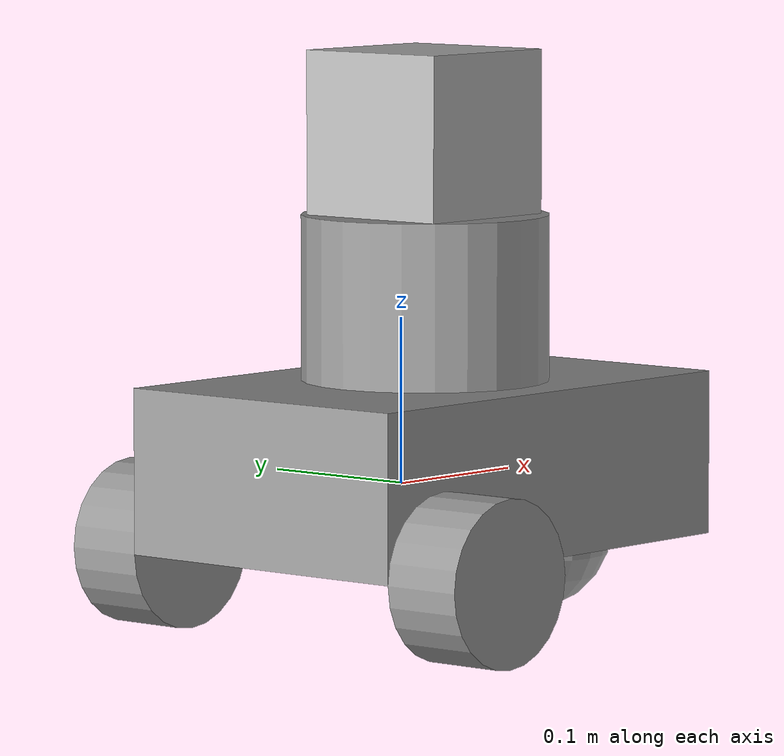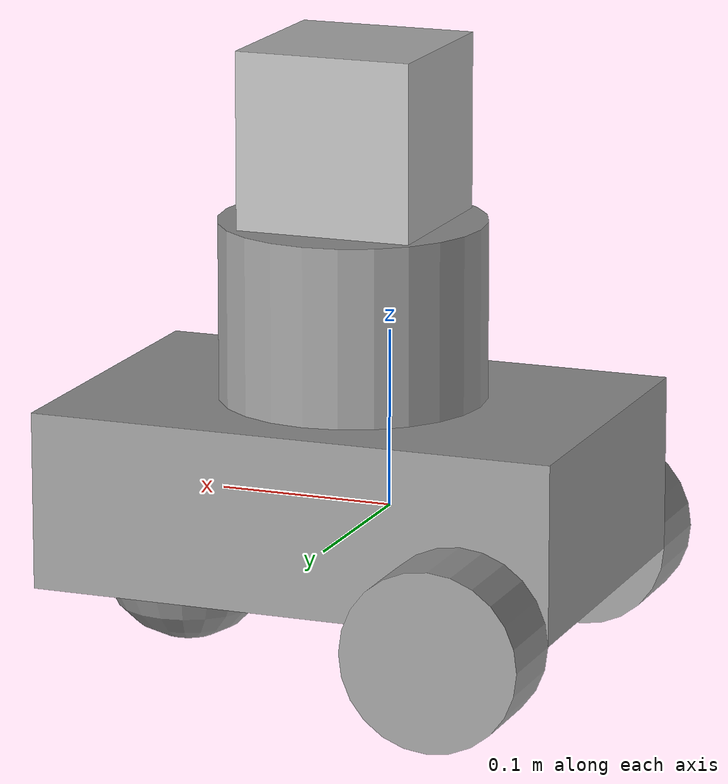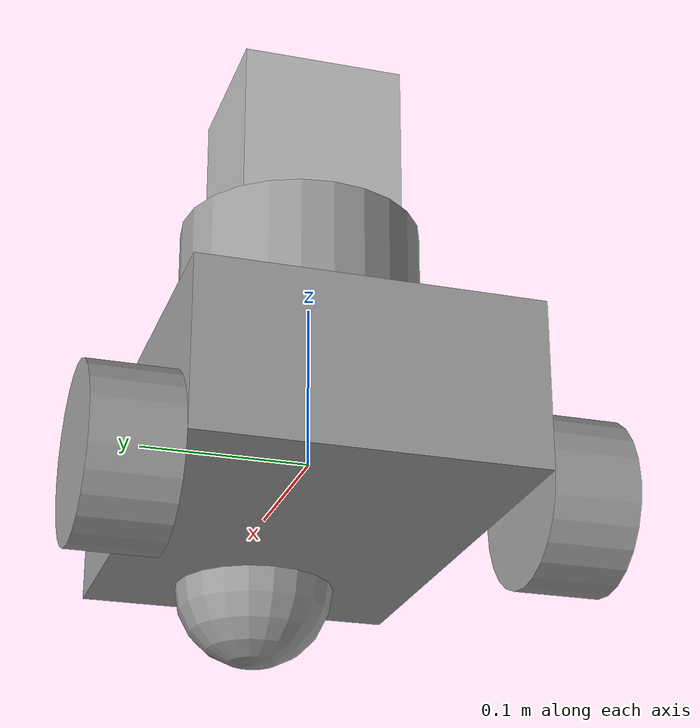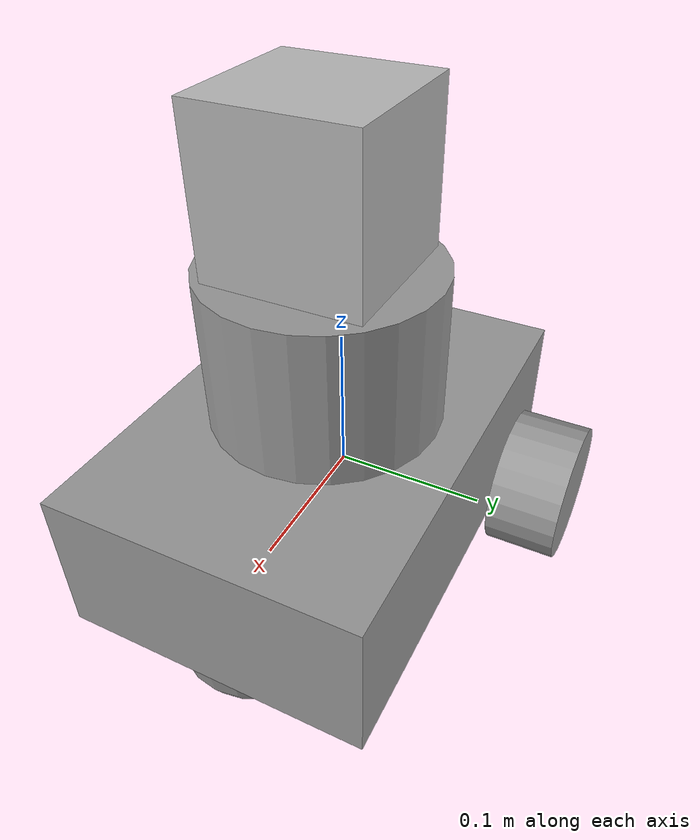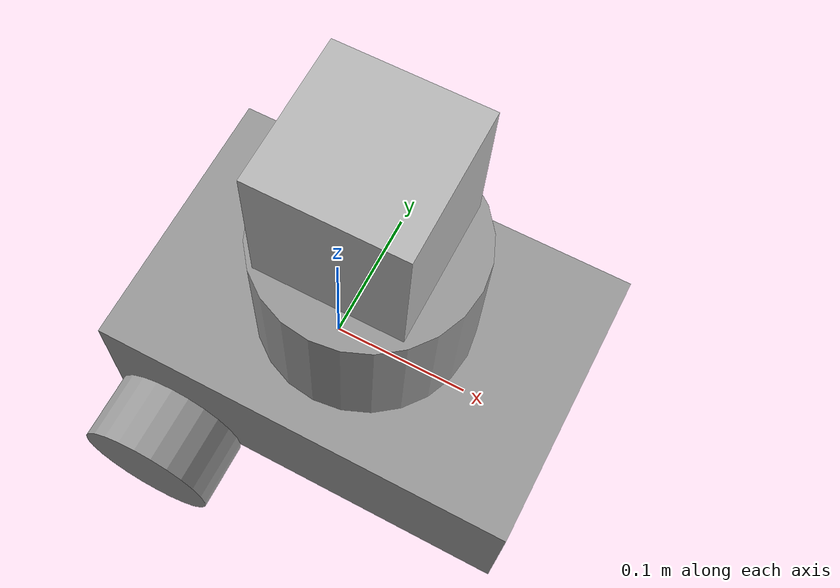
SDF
<?xml version='1.0'?>
<sdf version='1.6'>
  <model name='test_robot'>
    <link name='link_0'>
      <pose frame=''>0.021878 2.7e-05 0.011 0 -0 0</pose>
      <inertial>
        <mass>1</mass>
        <inertia>
          <ixx>0.166667</ixx>
          <ixy>0</ixy>
          <ixz>0</ixz>
          <iyy>0.166667</iyy>
          <iyz>0</iyz>
          <izz>0.166667</izz>
        </inertia>
        <pose frame=''>0 0 0 0 -0 0</pose>
      </inertial>
      <gravity>1</gravity>
      <self_collide>0</self_collide>
      <kinematic>0</kinematic>
      <visual name='visual'>
        <pose frame=''>0 0 0 0 -0 0</pose>
        <geometry>
          <box>
            <size>0.3 0.2 0.1</size>
          </box>
        </geometry>
        <material>
          <lighting>1</lighting>
          <script>
            <uri>file://media/materials/scripts/gazebo.material</uri>
            <name>Gazebo/Grey</name>
          </script>
          <shader type='pixel'>
            <normal_map>__default__</normal_map>
          </shader>
          <ambient>0.3 0.3 0.3 1</ambient>
          <diffuse>0.7 0.7 0.7 1</diffuse>
          <specular>0.01 0.01 0.01 1</specular>
          <emissive>0 0 0 1</emissive>
        </material>
        <transparency>0</transparency>
        <cast_shadows>1</cast_shadows>
      </visual>
      <collision name='collision'>
        <laser_retro>0</laser_retro>
        <max_contacts>10</max_contacts>
        <pose frame=''>0 0 0 0 -0 0</pose>
        <geometry>
          <box>
            <size>0.3 0.2 0.1</size>
          </box>
        </geometry>
        <surface>
          <friction>
            <ode>
              <mu>1</mu>
              <mu2>1</mu2>
              <fdir1>0 0 0</fdir1>
              <slip1>0</slip1>
              <slip2>0</slip2>
            </ode>
            <torsional>
              <coefficient>1</coefficient>
              <patch_radius>0</patch_radius>
              <surface_radius>0</surface_radius>
              <use_patch_radius>1</use_patch_radius>
              <ode>
                <slip>0</slip>
              </ode>
            </torsional>
          </friction>
          <bounce>
            <restitution_coefficient>0</restitution_coefficient>
            <threshold>1e+06</threshold>
          </bounce>
          <contact>
            <collide_without_contact>0</collide_without_contact>
            <collide_without_contact_bitmask>1</collide_without_contact_bitmask>
            <collide_bitmask>1</collide_bitmask>
            <ode>
              <soft_cfm>0</soft_cfm>
              <soft_erp>0.2</soft_erp>
              <kp>1e+13</kp>
              <kd>1</kd>
              <max_vel>0.01</max_vel>
              <min_depth>0</min_depth>
            </ode>
            <bullet>
              <split_impulse>1</split_impulse>
              <split_impulse_penetration_threshold>-0.01</split_impulse_penetration_threshold>
              <soft_cfm>0</soft_cfm>
              <soft_erp>0.2</soft_erp>
              <kp>1e+13</kp>
              <kd>1</kd>
            </bullet>
          </contact>
        </surface>
      </collision>
    </link>
    <link name='link_1'>
      <pose frame=''>-0.078122 0.125027 -0.039 1.5707 -0 0</pose>
      <inertial>
        <mass>1</mass>
        <inertia>
          <ixx>0.145833</ixx>
          <ixy>0</ixy>
          <ixz>0</ixz>
          <iyy>0.145833</iyy>
          <iyz>0</iyz>
          <izz>0.125</izz>
        </inertia>
        <pose frame=''>0 0 0 0 -0 0</pose>
      </inertial>
      <gravity>1</gravity>
      <self_collide>0</self_collide>
      <kinematic>0</kinematic>
      <visual name='visual'>
        <pose frame=''>0 0 0 0 -0 0</pose>
        <geometry>
          <cylinder>
            <radius>0.05</radius>
            <length>0.05</length>
          </cylinder>
        </geometry>
        <material>
          <lighting>1</lighting>
          <script>
            <uri>file://media/materials/scripts/gazebo.material</uri>
            <name>Gazebo/Grey</name>
          </script>
          <shader type='pixel'>
            <normal_map>__default__</normal_map>
          </shader>
          <ambient>0.3 0.3 0.3 1</ambient>
          <diffuse>0.7 0.7 0.7 1</diffuse>
          <specular>0.01 0.01 0.01 1</specular>
          <emissive>0 0 0 1</emissive>
        </material>
        <transparency>0</transparency>
        <cast_shadows>1</cast_shadows>
      </visual>
      <collision name='collision'>
        <laser_retro>0</laser_retro>
        <max_contacts>10</max_contacts>
        <pose frame=''>0 0 0 0 -0 0</pose>
        <geometry>
          <cylinder>
            <radius>0.05</radius>
            <length>0.05</length>
          </cylinder>
        </geometry>
        <surface>
          <friction>
            <ode>
              <mu>1</mu>
              <mu2>1</mu2>
              <fdir1>0 0 0</fdir1>
              <slip1>0</slip1>
              <slip2>0</slip2>
            </ode>
            <torsional>
              <coefficient>1</coefficient>
              <patch_radius>0</patch_radius>
              <surface_radius>0</surface_radius>
              <use_patch_radius>1</use_patch_radius>
              <ode>
                <slip>0</slip>
              </ode>
            </torsional>
          </friction>
          <bounce>
            <restitution_coefficient>0</restitution_coefficient>
            <threshold>1e+06</threshold>
          </bounce>
          <contact>
            <collide_without_contact>0</collide_without_contact>
            <collide_without_contact_bitmask>1</collide_without_contact_bitmask>
            <collide_bitmask>1</collide_bitmask>
            <ode>
              <soft_cfm>0</soft_cfm>
              <soft_erp>0.2</soft_erp>
              <kp>1e+13</kp>
              <kd>1</kd>
              <max_vel>0.01</max_vel>
              <min_depth>0</min_depth>
            </ode>
            <bullet>
              <split_impulse>1</split_impulse>
              <split_impulse_penetration_threshold>-0.01</split_impulse_penetration_threshold>
              <soft_cfm>0</soft_cfm>
              <soft_erp>0.2</soft_erp>
              <kp>1e+13</kp>
              <kd>1</kd>
            </bullet>
          </contact>
        </surface>
      </collision>
    </link>
    <link name='link_1_clone'>
      <pose frame=''>-0.078122 -0.124973 -0.039 1.5707 -0 0</pose>
      <inertial>
        <mass>1</mass>
        <inertia>
          <ixx>0.145833</ixx>
          <ixy>0</ixy>
          <ixz>0</ixz>
          <iyy>0.145833</iyy>
          <iyz>0</iyz>
          <izz>0.125</izz>
        </inertia>
        <pose frame=''>0 0 0 0 -0 0</pose>
      </inertial>
      <self_collide>0</self_collide>
      <kinematic>0</kinematic>
      <gravity>1</gravity>
      <visual name='visual'>
        <pose frame=''>0 0 0 0 -0 0</pose>
        <geometry>
          <cylinder>
            <radius>0.05</radius>
            <length>0.05</length>
          </cylinder>
        </geometry>
        <material>
          <lighting>1</lighting>
          <script>
            <uri>file://media/materials/scripts/gazebo.material</uri>
            <name>Gazebo/Grey</name>
          </script>
          <shader type='pixel'>
            <normal_map>__default__</normal_map>
          </shader>
          <ambient>0.3 0.3 0.3 1</ambient>
          <diffuse>0.7 0.7 0.7 1</diffuse>
          <specular>0.01 0.01 0.01 1</specular>
          <emissive>0 0 0 1</emissive>
        </material>
        <transparency>0</transparency>
        <cast_shadows>1</cast_shadows>
      </visual>
      <collision name='collision'>
        <laser_retro>0</laser_retro>
        <max_contacts>10</max_contacts>
        <pose frame=''>0 0 0 0 -0 0</pose>
        <geometry>
          <cylinder>
            <radius>0.05</radius>
            <length>0.05</length>
          </cylinder>
        </geometry>
        <surface>
          <friction>
            <ode>
              <mu>1</mu>
              <mu2>1</mu2>
              <fdir1>0 0 0</fdir1>
              <slip1>0</slip1>
              <slip2>0</slip2>
            </ode>
            <torsional>
              <coefficient>1</coefficient>
              <patch_radius>0</patch_radius>
              <surface_radius>0</surface_radius>
              <use_patch_radius>1</use_patch_radius>
              <ode>
                <slip>0</slip>
              </ode>
            </torsional>
          </friction>
          <bounce>
            <restitution_coefficient>0</restitution_coefficient>
            <threshold>1e+06</threshold>
          </bounce>
          <contact>
            <collide_without_contact>0</collide_without_contact>
            <collide_without_contact_bitmask>1</collide_without_contact_bitmask>
            <collide_bitmask>1</collide_bitmask>
            <ode>
              <soft_cfm>0</soft_cfm>
              <soft_erp>0.2</soft_erp>
              <kp>1e+13</kp>
              <kd>1</kd>
              <max_vel>0.01</max_vel>
              <min_depth>0</min_depth>
            </ode>
            <bullet>
              <split_impulse>1</split_impulse>
              <split_impulse_penetration_threshold>-0.01</split_impulse_penetration_threshold>
              <soft_cfm>0</soft_cfm>
              <soft_erp>0.2</soft_erp>
              <kp>1e+13</kp>
              <kd>1</kd>
            </bullet>
          </contact>
        </surface>
      </collision>
    </link>
    <link name='link_2'>
      <pose frame=''>0.121878 2.7e-05 -0.039 0 -0 0</pose>
      <inertial>
        <mass>1</mass>
        <inertia>
          <ixx>0.1</ixx>
          <ixy>0</ixy>
          <ixz>0</ixz>
          <iyy>0.1</iyy>
          <iyz>0</iyz>
          <izz>0.1</izz>
        </inertia>
        <pose frame=''>0 0 0 0 -0 0</pose>
      </inertial>
      <gravity>1</gravity>
      <self_collide>0</self_collide>
      <kinematic>0</kinematic>
      <visual name='visual'>
        <pose frame=''>0 0 0 0 -0 0</pose>
        <geometry>
          <sphere>
            <radius>0.05</radius>
          </sphere>
        </geometry>
        <material>
          <lighting>1</lighting>
          <script>
            <uri>file://media/materials/scripts/gazebo.material</uri>
            <name>Gazebo/Grey</name>
          </script>
          <shader type='pixel'>
            <normal_map>__default__</normal_map>
          </shader>
          <ambient>0.3 0.3 0.3 1</ambient>
          <diffuse>0.7 0.7 0.7 1</diffuse>
          <specular>0.01 0.01 0.01 1</specular>
          <emissive>0 0 0 1</emissive>
        </material>
        <transparency>0</transparency>
        <cast_shadows>1</cast_shadows>
      </visual>
      <collision name='collision'>
        <laser_retro>0</laser_retro>
        <max_contacts>10</max_contacts>
        <pose frame=''>0 0 0 0 -0 0</pose>
        <geometry>
          <sphere>
            <radius>0.05</radius>
          </sphere>
        </geometry>
        <surface>
          <friction>
            <ode>
              <mu>1</mu>
              <mu2>1</mu2>
              <fdir1>0 0 0</fdir1>
              <slip1>0</slip1>
              <slip2>0</slip2>
            </ode>
            <torsional>
              <coefficient>1</coefficient>
              <patch_radius>0</patch_radius>
              <surface_radius>0</surface_radius>
              <use_patch_radius>1</use_patch_radius>
              <ode>
                <slip>0</slip>
              </ode>
            </torsional>
          </friction>
          <bounce>
            <restitution_coefficient>0</restitution_coefficient>
            <threshold>1e+06</threshold>
          </bounce>
          <contact>
            <collide_without_contact>0</collide_without_contact>
            <collide_without_contact_bitmask>1</collide_without_contact_bitmask>
            <collide_bitmask>1</collide_bitmask>
            <ode>
              <soft_cfm>0</soft_cfm>
              <soft_erp>0.2</soft_erp>
              <kp>1e+13</kp>
              <kd>1</kd>
              <max_vel>0.01</max_vel>
              <min_depth>0</min_depth>
            </ode>
            <bullet>
              <split_impulse>1</split_impulse>
              <split_impulse_penetration_threshold>-0.01</split_impulse_penetration_threshold>
              <soft_cfm>0</soft_cfm>
              <soft_erp>0.2</soft_erp>
              <kp>1e+13</kp>
              <kd>1</kd>
            </bullet>
          </contact>
        </surface>
      </collision>
    </link>
    <link name='link_3'>
      <pose frame=''>0.021878 2.7e-05 0.111 0 -0 0</pose>
      <inertial>
        <mass>1</mass>
        <inertia>
          <ixx>0.145833</ixx>
          <ixy>0</ixy>
          <ixz>0</ixz>
          <iyy>0.145833</iyy>
          <iyz>0</iyz>
          <izz>0.125</izz>
        </inertia>
        <pose frame=''>0 0 0 0 -0 0</pose>
      </inertial>
      <gravity>1</gravity>
      <self_collide>0</self_collide>
      <kinematic>0</kinematic>
      <visual name='visual'>
        <pose frame=''>0 0 0 0 -0 0</pose>
        <geometry>
          <cylinder>
            <radius>0.075</radius>
            <length>0.1</length>
          </cylinder>
        </geometry>
        <material>
          <lighting>1</lighting>
          <script>
            <uri>file://media/materials/scripts/gazebo.material</uri>
            <name>Gazebo/Grey</name>
          </script>
          <shader type='pixel'>
            <normal_map>__default__</normal_map>
          </shader>
          <ambient>0.3 0.3 0.3 1</ambient>
          <diffuse>0.7 0.7 0.7 1</diffuse>
          <specular>0.01 0.01 0.01 1</specular>
          <emissive>0 0 0 1</emissive>
        </material>
        <transparency>0</transparency>
        <cast_shadows>1</cast_shadows>
      </visual>
      <collision name='collision'>
        <laser_retro>0</laser_retro>
        <max_contacts>10</max_contacts>
        <pose frame=''>0 0 0 0 -0 0</pose>
        <geometry>
          <cylinder>
            <radius>0.075</radius>
            <length>0.1</length>
          </cylinder>
        </geometry>
        <surface>
          <friction>
            <ode>
              <mu>1</mu>
              <mu2>1</mu2>
              <fdir1>0 0 0</fdir1>
              <slip1>0</slip1>
              <slip2>0</slip2>
            </ode>
            <torsional>
              <coefficient>1</coefficient>
              <patch_radius>0</patch_radius>
              <surface_radius>0</surface_radius>
              <use_patch_radius>1</use_patch_radius>
              <ode>
                <slip>0</slip>
              </ode>
            </torsional>
          </friction>
          <bounce>
            <restitution_coefficient>0</restitution_coefficient>
            <threshold>1e+06</threshold>
          </bounce>
          <contact>
            <collide_without_contact>0</collide_without_contact>
            <collide_without_contact_bitmask>1</collide_without_contact_bitmask>
            <collide_bitmask>1</collide_bitmask>
            <ode>
              <soft_cfm>0</soft_cfm>
              <soft_erp>0.2</soft_erp>
              <kp>1e+13</kp>
              <kd>1</kd>
              <max_vel>0.01</max_vel>
              <min_depth>0</min_depth>
            </ode>
            <bullet>
              <split_impulse>1</split_impulse>
              <split_impulse_penetration_threshold>-0.01</split_impulse_penetration_threshold>
              <soft_cfm>0</soft_cfm>
              <soft_erp>0.2</soft_erp>
              <kp>1e+13</kp>
              <kd>1</kd>
            </bullet>
          </contact>
        </surface>
      </collision>
    </link>
    <model name='depth_camera'>
      <link name='link'>
        <pose frame=''>0 0 0.05 0 -0 0</pose>
        <inertial>
          <mass>0.1</mass>
          <inertia>
            <ixx>0.000166667</ixx>
            <iyy>0.000166667</iyy>
            <izz>0.000166667</izz>
            <ixy>0</ixy>
            <ixz>0</ixz>
            <iyz>0</iyz>
          </inertia>
        </inertial>
        <collision name='collision'>
          <geometry>
            <box>
              <size>0.1 0.1 0.1</size>
            </box>
          </geometry>
        </collision>
        <visual name='visual'>
          <geometry>
            <box>
              <size>0.1 0.1 0.1</size>
            </box>
          </geometry>
        </visual>
        <sensor name='camera' type='depth'>
          <camera name='__default__'>
            <horizontal_fov>1.047</horizontal_fov>
            <image>
              <width>320</width>
              <height>240</height>
            </image>
            <clip>
              <near>0.1</near>
              <far>100</far>
            </clip>
          </camera>
          <always_on>1</always_on>
          <update_rate>30</update_rate>
          <visualize>1</visualize>
        </sensor>
      </link>
      <pose frame=''>0.020611 -0.000134 0.159999 0 -0 0</pose>
    </model>
    <joint name='link_0_JOINT_0' type='revolute'>
      <parent>link_0</parent>
      <child>link_1</child>
      <pose frame=''>0 0 0 0 -0 0</pose>
      <axis>
        <xyz>0 0 1</xyz>
        <use_parent_model_frame>0</use_parent_model_frame>
        <limit>
          <lower>-1.79769e+308</lower>
          <upper>1.79769e+308</upper>
          <effort>-1</effort>
          <velocity>-1</velocity>
        </limit>
        <dynamics>
          <spring_reference>0</spring_reference>
          <spring_stiffness>0</spring_stiffness>
          <damping>0</damping>
        </dynamics>
      </axis>
      <physics>
        <ode>
          <limit>
            <cfm>0</cfm>
            <erp>0.2</erp>
          </limit>
          <suspension>
            <cfm>0</cfm>
            <erp>0.2</erp>
          </suspension>
        </ode>
      </physics>
    </joint>
    <joint name='link_0_JOINT_1' type='revolute'>
      <parent>link_0</parent>
      <child>link_1_clone</child>
      <pose frame=''>0 0 0 0 -0 0</pose>
      <axis>
        <xyz>0 0 1</xyz>
        <use_parent_model_frame>0</use_parent_model_frame>
        <limit>
          <lower>-1.79769e+308</lower>
          <upper>1.79769e+308</upper>
          <effort>-1</effort>
          <velocity>-1</velocity>
        </limit>
        <dynamics>
          <spring_reference>0</spring_reference>
          <spring_stiffness>0</spring_stiffness>
          <damping>0</damping>
        </dynamics>
      </axis>
      <physics>
        <ode>
          <limit>
            <cfm>0</cfm>
            <erp>0.2</erp>
          </limit>
          <suspension>
            <cfm>0</cfm>
            <erp>0.2</erp>
          </suspension>
        </ode>
      </physics>
    </joint>
    <joint name='link_0_JOINT_3' type='ball'>
      <parent>link_0</parent>
      <child>link_2</child>
      <pose frame=''>0 0 0 0 -0 0</pose>
      <physics>
        <ode>
          <limit>
            <cfm>0</cfm>
            <erp>0.2</erp>
          </limit>
          <suspension>
            <cfm>0</cfm>
            <erp>0.2</erp>
          </suspension>
        </ode>
      </physics>
    </joint>
    <joint name='link_0_JOINT_4' type='fixed'>
      <parent>link_0</parent>
      <child>link_3</child>
      <pose frame=''>0 0 0 0 -0 0</pose>
      <physics>
        <ode>
          <limit>
            <cfm>0</cfm>
            <erp>0.2</erp>
          </limit>
          <suspension>
            <cfm>0</cfm>
            <erp>0.2</erp>
          </suspension>
        </ode>
      </physics>
    </joint>
    <joint name='link_3_JOINT_6' type='fixed'>
      <parent>link_3</parent>
      <child>depth_camera::link</child>
      <pose frame=''>0 0 0 0 -0 0</pose>
      <physics>
        <ode>
          <limit>
            <cfm>0</cfm>
            <erp>0.2</erp>
          </limit>
          <suspension>
            <cfm>0</cfm>
            <erp>0.2</erp>
          </suspension>
        </ode>
      </physics>
    </joint>
    <static>0</static>
    <allow_auto_disable>1</allow_auto_disable>
  </model>
</sdf>
